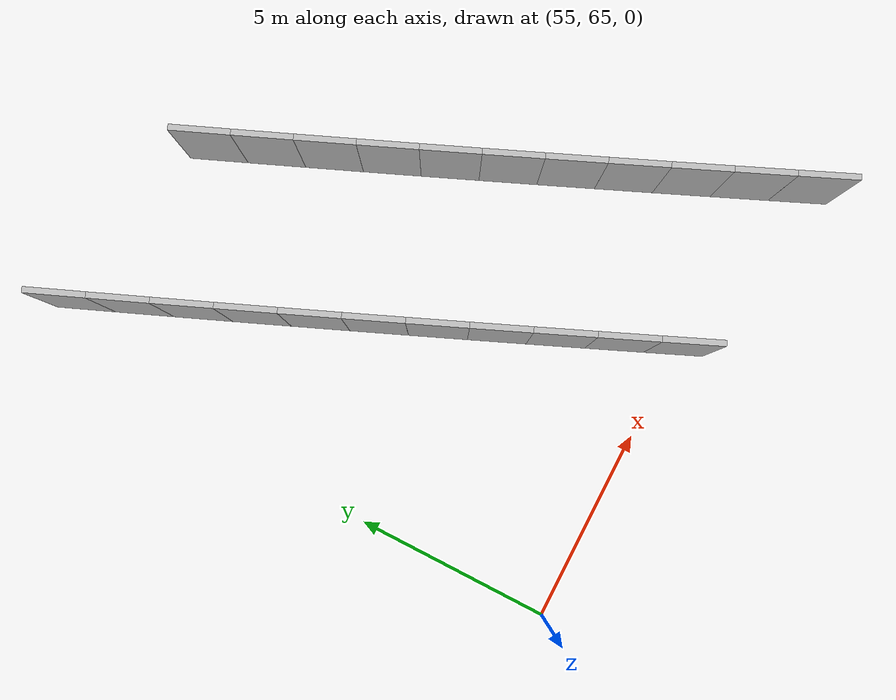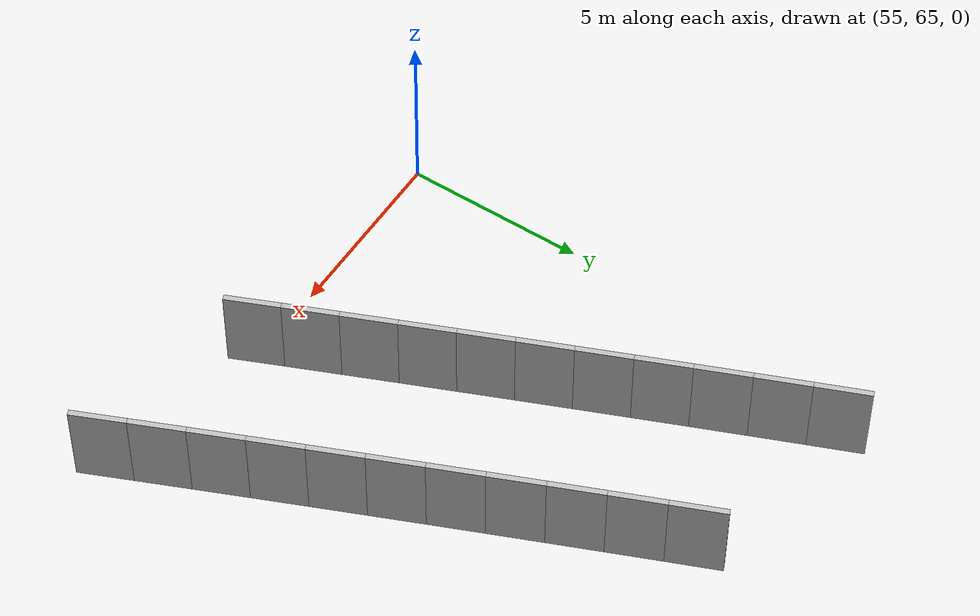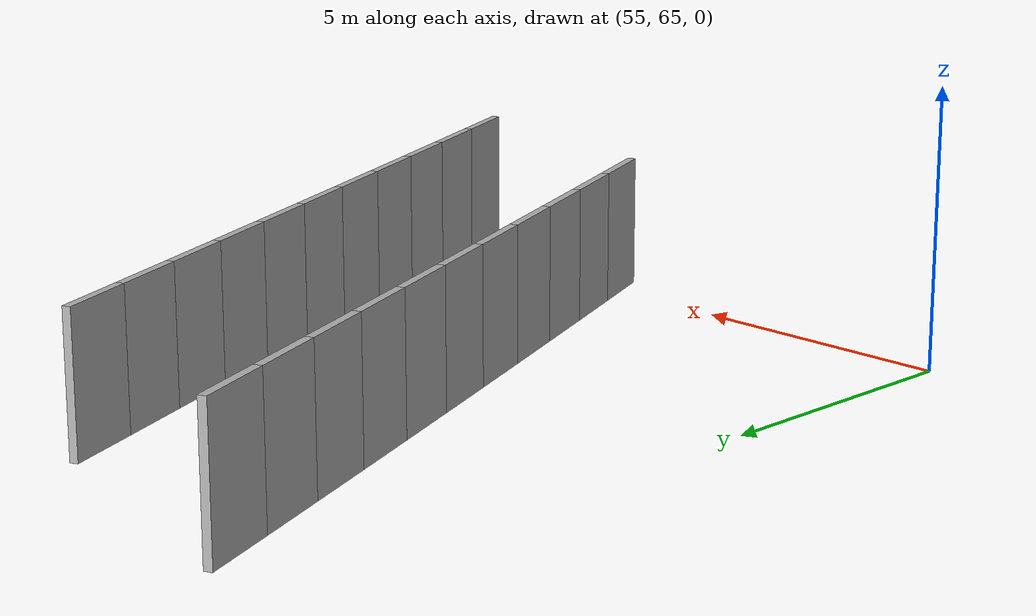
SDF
<sdf version="1.6">
 <model name="sps_0207">
  <static>1</static>
  <allow_auto_disable>0</allow_auto_disable>
  <link name="Wall8304">
   <collision name="collision"><geometry><box><size>1.49891 0.15 2.5</size></box></geometry></collision>
   <visual name="visual">
    <geometry><box><size>1.49891 0.15 2.5</size></box></geometry>
    <transparency>0.0</transparency>
   </visual>
   <pose>56.577 78.8154 1.25 0 0 -1.1777</pose>
  </link>
  <link name="Wall8305">
   <collision name="collision"><geometry><box><size>1.49903 0.15 2.5</size></box></geometry></collision>
   <visual name="visual">
    <geometry><box><size>1.49903 0.15 2.5</size></box></geometry>
    <transparency>0.0</transparency>
   </visual>
   <pose>57.1522 77.4312 1.25 0 0 -1.17623</pose>
  </link>
  <link name="Wall8306">
   <collision name="collision"><geometry><box><size>1.49916 0.15 2.5</size></box></geometry></collision>
   <visual name="visual">
    <geometry><box><size>1.49916 0.15 2.5</size></box></geometry>
    <transparency>0.0</transparency>
   </visual>
   <pose>57.7296 76.0478 1.25 0 0 -1.17455</pose>
  </link>
  <link name="Wall8307">
   <collision name="collision"><geometry><box><size>1.49886 0.15 2.5</size></box></geometry></collision>
   <visual name="visual">
    <geometry><box><size>1.49886 0.15 2.5</size></box></geometry>
    <transparency>0.0</transparency>
   </visual>
   <pose>58.3093 74.6654 1.25 0 0 -1.17292</pose>
  </link>
  <link name="Wall8308">
   <collision name="collision"><geometry><box><size>1.49916 0.15 2.5</size></box></geometry></collision>
   <visual name="visual">
    <geometry><box><size>1.49916 0.15 2.5</size></box></geometry>
    <transparency>0.0</transparency>
   </visual>
   <pose>58.891 73.2839 1.25 0 0 -1.1715</pose>
  </link>
  <link name="Wall8309">
   <collision name="collision"><geometry><box><size>1.49879 0.15 2.5</size></box></geometry></collision>
   <visual name="visual">
    <geometry><box><size>1.49879 0.15 2.5</size></box></geometry>
    <transparency>0.0</transparency>
   </visual>
   <pose>59.4748 71.9033 1.25 0 0 -1.16998</pose>
  </link>
  <link name="Wall8310">
   <collision name="collision"><geometry><box><size>1.49896 0.15 2.5</size></box></geometry></collision>
   <visual name="visual">
    <geometry><box><size>1.49896 0.15 2.5</size></box></geometry>
    <transparency>0.0</transparency>
   </visual>
   <pose>60.0608 70.5237 1.25 0 0 -1.16826</pose>
  </link>
  <link name="Wall8311">
   <collision name="collision"><geometry><box><size>1.49898 0.15 2.5</size></box></geometry></collision>
   <visual name="visual">
    <geometry><box><size>1.49898 0.15 2.5</size></box></geometry>
    <transparency>0.0</transparency>
   </visual>
   <pose>60.6492 69.145 1.25 0 0 -1.16667</pose>
  </link>
  <link name="Wall8312">
   <collision name="collision"><geometry><box><size>1.49896 0.15 2.5</size></box></geometry></collision>
   <visual name="visual">
    <geometry><box><size>1.49896 0.15 2.5</size></box></geometry>
    <transparency>0.0</transparency>
   </visual>
   <pose>61.2396 67.7672 1.25 0 0 -1.16525</pose>
  </link>
  <link name="Wall8313">
   <collision name="collision"><geometry><box><size>1.49886 0.15 2.5</size></box></geometry></collision>
   <visual name="visual">
    <geometry><box><size>1.49886 0.15 2.5</size></box></geometry>
    <transparency>0.0</transparency>
   </visual>
   <pose>61.8321 66.3904 1.25 0 0 -1.16345</pose>
  </link>
  <link name="Wall8314">
   <collision name="collision"><geometry><box><size>1.49888 0.15 2.5</size></box></geometry></collision>
   <visual name="visual">
    <geometry><box><size>1.49888 0.15 2.5</size></box></geometry>
    <transparency>0.0</transparency>
   </visual>
   <pose>62.427 65.0146 1.25 0 0 -1.16199</pose>
  </link>
  <link name="Wall9387">
   <collision name="collision"><geometry><box><size>1.49239 0.15 2.5</size></box></geometry></collision>
   <visual name="visual">
    <geometry><box><size>1.49239 0.15 2.5</size></box></geometry>
    <transparency>0.0</transparency>
   </visual>
   <pose>61.549 77.6457 1.25 0 0 -1.17469</pose>
  </link>
  <link name="Wall9388">
   <collision name="collision"><geometry><box><size>1.49235 0.15 2.5</size></box></geometry></collision>
   <visual name="visual">
    <geometry><box><size>1.49235 0.15 2.5</size></box></geometry>
    <transparency>0.0</transparency>
   </visual>
   <pose>62.126 76.2694 1.25 0 0 -1.17295</pose>
  </link>
  <link name="Wall9389">
   <collision name="collision"><geometry><box><size>1.4924 0.15 2.5</size></box></geometry></collision>
   <visual name="visual">
    <geometry><box><size>1.4924 0.15 2.5</size></box></geometry>
    <transparency>0.0</transparency>
   </visual>
   <pose>62.7052 74.894 1.25 0 0 -1.1715</pose>
  </link>
  <link name="Wall9390">
   <collision name="collision"><geometry><box><size>1.49236 0.15 2.5</size></box></geometry></collision>
   <visual name="visual">
    <geometry><box><size>1.49236 0.15 2.5</size></box></geometry>
    <transparency>0.0</transparency>
   </visual>
   <pose>63.2865 73.5195 1.25 0 0 -1.16989</pose>
  </link>
  <link name="Wall9391">
   <collision name="collision"><geometry><box><size>1.49243 0.15 2.5</size></box></geometry></collision>
   <visual name="visual">
    <geometry><box><size>1.49243 0.15 2.5</size></box></geometry>
    <transparency>0.0</transparency>
   </visual>
   <pose>63.87 72.1459 1.25 0 0 -1.16831</pose>
  </link>
  <link name="Wall9392">
   <collision name="collision"><geometry><box><size>1.49239 0.15 2.5</size></box></geometry></collision>
   <visual name="visual">
    <geometry><box><size>1.49239 0.15 2.5</size></box></geometry>
    <transparency>0.0</transparency>
   </visual>
   <pose>64.4556 70.7732 1.25 0 0 -1.1667</pose>
  </link>
  <link name="Wall9393">
   <collision name="collision"><geometry><box><size>1.49236 0.15 2.5</size></box></geometry></collision>
   <visual name="visual">
    <geometry><box><size>1.49236 0.15 2.5</size></box></geometry>
    <transparency>0.0</transparency>
   </visual>
   <pose>65.0435 69.4015 1.25 0 0 -1.16509</pose>
  </link>
  <link name="Wall9394">
   <collision name="collision"><geometry><box><size>1.49243 0.15 2.5</size></box></geometry></collision>
   <visual name="visual">
    <geometry><box><size>1.49243 0.15 2.5</size></box></geometry>
    <transparency>0.0</transparency>
   </visual>
   <pose>65.6335 68.0307 1.25 0 0 -1.16364</pose>
  </link>
  <link name="Wall9395">
   <collision name="collision"><geometry><box><size>1.49244 0.15 2.5</size></box></geometry></collision>
   <visual name="visual">
    <geometry><box><size>1.49244 0.15 2.5</size></box></geometry>
    <transparency>0.0</transparency>
   </visual>
   <pose>66.2258 66.6608 1.25 0 0 -1.16186</pose>
  </link>
  <link name="Wall9396">
   <collision name="collision"><geometry><box><size>1.49233 0.15 2.5</size></box></geometry></collision>
   <visual name="visual">
    <geometry><box><size>1.49233 0.15 2.5</size></box></geometry>
    <transparency>0.0</transparency>
   </visual>
   <pose>66.8202 65.2919 1.25 0 0 -1.1604</pose>
  </link>
  <link name="Wall9397">
   <collision name="collision"><geometry><box><size>1.49248 0.15 2.5</size></box></geometry></collision>
   <visual name="visual">
    <geometry><box><size>1.49248 0.15 2.5</size></box></geometry>
    <transparency>0.0</transparency>
   </visual>
   <pose>67.4167 63.9239 1.25 0 0 -1.15884</pose>
  </link>
 </model>
</sdf>
